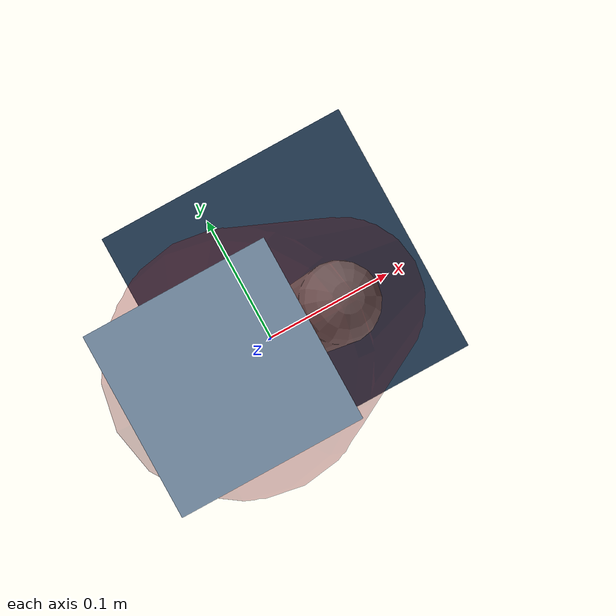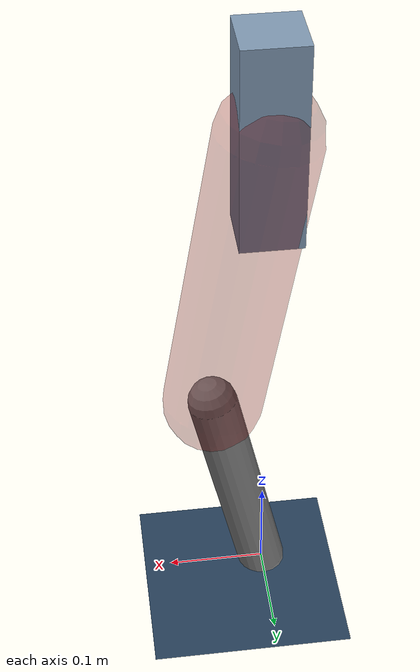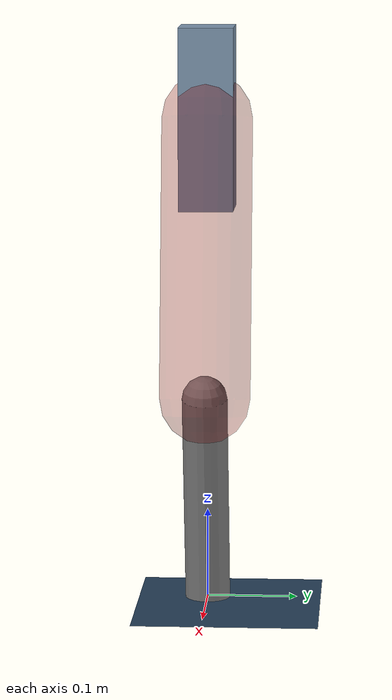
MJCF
<mujoco model="Hopper2D">
	<compiler inertiafromgeom="true" angle="radian" />
	<option timestep="0.001" integrator="implicit" cone="elliptic" solver="Newton" tolerance="1e-10" />

	<default>
		<geom contype="1" conaffinity="1" condim="3" friction="2 0.005 0.0001" solref="0.005 1" />
		<joint limited="true" damping="0.1" />
	</default>

	<asset>
		<texture name="skybox" type="skybox" builtin="gradient" rgb1=".4 .6 .8" rgb2="0 0 0" width="800" height="800" />
		<texture name="grid" type="2d" builtin="checker" rgb1=".1 .2 .3" rgb2=".2 .3 .4" width="300" height="300" mark="edge" markrgb=".2 .3 .4" />
		<material name="ground" texture="grid" texrepeat="1 1" texuniform="true" reflectance="0.1" />
		<material name="leg" rgba="0.5 0.6 0.7 1" />
	</asset>

	<worldbody>

		<geom name="floor" type="plane" size="5 5 0.25" material="ground" />

		<light directional="false" diffuse="0.8 0.8 0.8" specular="0.3 0.3 0.3" pos="0 0 2" dir="0 0 -1" />
		<light mode="targetbodycom" target="base" directional="false" diffuse="0.8 0.8 0.8" specular="0.3 0.3 0.3" pos="0 0 2" dir="0 0 -1" />

		<camera name="fixed" pos="0 -2 1" xyaxes="1 0 0 0 0 1" />
		<camera name="tracking" mode="trackcom" pos="0 -3 1" />

		<body name="root" pos="0 0 0.5394990231119228">
			<joint name="slide_x" type="slide" axis="1 0 0" range="-100 100" />
			<joint name="slide_z" type="slide" axis="0 0 1" range="0 10" />

			<body name="base" pos="0 0 0">
				<geom name="torso" type="box" size="0.03 0.03 0.1" mass="2.71" material="leg" />

				<body name="link1" pos="0 0 0" euler="0 1.4015612932320978 0">
					<joint type="hinge" axis="0 -1 0" pos="0 0 0" name="hinge1" limited="true" range="-3.14 3.14" stiffness="0" damping="0.1" />
					<geom name="thigh" type="capsule" fromto="0 0 0 0.30749907751567485 0 0" size="0.05" rgba="0.5 0 0 0.3" mass="1.0090475092923221" />

					<body name="link2" pos="0.30749907751567485 0 0" euler="0 0.3849181645779958 0">
						<joint type="hinge" axis="0 -1 0" pos="0 0 0" name="hinge2" limited="true" range="-3.14 3.14" stiffness="0" damping="0.1" />
						<geom name="shank" type="capsule" fromto="0 0 0 0.24199994559624793 0 0" size="0.025" mass="0.43589995647699836" />

					</body>
				</body>
			</body>
		</body>
	</worldbody>

	<actuator>
		<motor name="torque1" joint="hinge1" ctrlrange="-76.90361036226716 76.90361036226716" ctrllimited="true" gear="1" />
		<motor name="torque2" joint="hinge2" ctrlrange="-116.89735256001238 116.89735256001238" ctrllimited="true" gear="1" />
	</actuator>
</mujoco>
